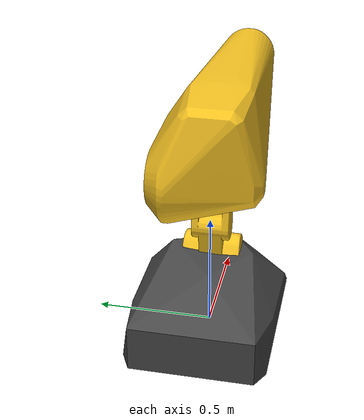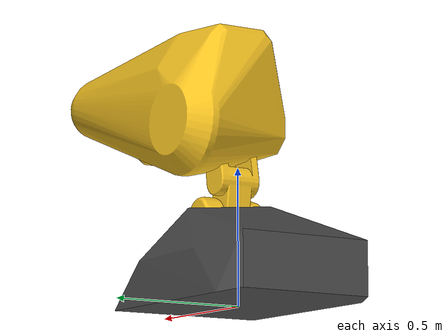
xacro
<?xml version="1.0"?>
<robot name="fanuc_lrmate200id" xmlns:xacro="http://ros.org/wiki/xacro">
  <xacro:include filename="$(find fanuc_lrmate200id_support)/urdf/lrmate200id_macro.xacro"/>
  <xacro:include filename="$(find fanuc_lrmate200id_gazebo_demo)/urdf/lrmate200id_ft.gazebo"/>
  <xacro:fanuc_lrmate200id prefix=""/>
</robot>

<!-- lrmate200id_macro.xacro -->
<robot xmlns:xacro="http://wiki.ros.org/xacro">
  <xacro:include filename="$(find fanuc_resources)/urdf/common_materials.xacro"/>

  <!-- Inertia parameters -->
  <property name="base_link_mass" value="6.215" />  <!-- This mass might be incorrect -->
  <property name="link_1_mass" value="2.13" />
  <property name="link_2_mass" value="7.65" />
  <property name="link_3_mass" value="2.91" />
  <property name="link_4_mass" value="3.70" />
  <property name="link_5_mass" value="1.70" />
  <property name="link_6_mass" value="0.137" />  <!-- This mass might be incorrect -->

  <xacro:macro name="fanuc_lrmate200id" params="prefix">
    <!-- links: main serial chain -->
    <link name="${prefix}base_link">
      <visual>
        <origin xyz="0 0 0" rpy="0 0 0"/>
        <geometry>
          <mesh filename="package://fanuc_lrmate200id_support/meshes/lrmate200id/visual/base_link.stl"/>
        </geometry>
        <xacro:material_fanuc_gray28 />
      </visual>
      <collision>
        <origin xyz="0 0 0" rpy="0 0 0"/>
        <geometry>
          <mesh filename="package://fanuc_lrmate200id_support/meshes/lrmate200id/collision/base_link.stl"/>
        </geometry>
      </collision>
      <inertial>
        <origin xyz="0 0 0" rpy="0 0 0"/>
        <mass value="${base_link_mass}"/>
        <!-- Copied from abb_irb120t https://github.com/ros-industrial/abb_experimental/blob/indigo-devel/abb_irb120_support/urdf/irb120t_macro.xacro. -->
        <inertia ixx="0.0247272" ixy="-8.0784E-05" ixz="0.00130902" iyy="0.0491285" iyz="-8.0419E-06" izz="0.0472376"/>
      </inertial>
    </link>
    <link name="${prefix}link_1">
      <visual>
        <origin xyz="0 0 0" rpy="0 0 0"/>
        <geometry>
          <mesh filename="package://fanuc_lrmate200id_support/meshes/lrmate200id/visual/link_1.stl"/>
        </geometry>
        <xacro:material_fanuc_yellow />
      </visual>
      <collision>
        <origin xyz="0 0 0" rpy="0 0 0"/>
        <geometry>
          <mesh filename="package://fanuc_lrmate200id_support/meshes/lrmate200id/collision/link_1.stl"/>
        </geometry>
      </collision>
      <inertial>
        <origin xyz="-0.000010 -0.054550 0.028725" rpy="0 0 0"/>
        <mass value="${link_1_mass}"/>
        <inertia
          ixx="${600 * 0.000048}" ixy="0.0" ixz="${600 * -0.000006}"
          iyy="${600 * 0.000035}" iyz="0.0" izz="${600 * 0.000037}"/>
      </inertial>
    </link>
    <link name="${prefix}link_2">
      <visual>
        <origin xyz="0 0 0" rpy="0 0 0"/>
        <geometry>
          <mesh filename="package://fanuc_lrmate200id_support/meshes/lrmate200id/visual/link_2.stl"/>
        </geometry>
        <xacro:material_fanuc_yellow />
      </visual>
      <collision>
        <origin xyz="0 0 0" rpy="0 0 0"/>
        <geometry>
          <mesh filename="package://fanuc_lrmate200id_support/meshes/lrmate200id/collision/link_2.stl"/>
        </geometry>
      </collision>
      <inertial>
        <origin xyz="-0.002701 -0.000977 0.159466" rpy="0 0 0"/>
        <mass value="${link_2_mass}"/>
        <inertia
          ixx="${600 * 0.000182}" ixy="0.0" ixz="0.0"
          iyy="${600 * 0.000157}" iyz="${600 * -0.000001}"
          izz="${600 * 0.000049}"/>
      </inertial>
    </link>
    <link name="${prefix}link_3">
      <visual>
        <origin xyz="0 0 0" rpy="0 0 0"/>
        <geometry>
          <mesh filename="package://fanuc_lrmate200id_support/meshes/lrmate200id/visual/link_3.stl"/>
        </geometry>
        <xacro:material_fanuc_yellow />
      </visual>
      <collision>
        <origin xyz="0 0 0" rpy="0 0 0"/>
        <geometry>
          <mesh filename="package://fanuc_lrmate200id_support/meshes/lrmate200id/collision/link_3.stl"/>
        </geometry>
      </collision>
      <inertial>
        <origin xyz="-0.000065 0.017074 0.008866" rpy="0 0 0"/>
        <mass value="${link_3_mass}"/>
        <inertia
          ixx="${600 * 0.000007}" ixy="0.0" ixz="${600 * -0.000001}"
          iyy="${600 * 0.000008}" iyz="0.0"
          izz="${600 * 0.000008}"/>
      </inertial>
    </link>
    <link name="${prefix}link_4">
      <visual>
        <origin xyz="0 0 0" rpy="0 0 0"/>
        <geometry>
          <mesh filename="package://fanuc_lrmate200id_support/meshes/lrmate200id/visual/link_4.stl"/>
        </geometry>
        <xacro:material_fanuc_yellow />
      </visual>
      <collision>
        <origin xyz="0 0 0" rpy="0 0 0"/>
        <geometry>
          <mesh filename="package://fanuc_lrmate200id_support/meshes/lrmate200id/collision/link_4.stl"/>
        </geometry>
      </collision>
      <inertial>
        <origin xyz="0.000067 0.002203 0.221634" rpy="0 0 0"/>
        <mass value="${link_4_mass}"/>
        <inertia
          ixx="${600 * 0.000005}" ixy="0.0" ixz="0.0"
          iyy="${600 * 0.000019}" iyz="0.0"
          izz="${600 * 0.000019}"/>
      </inertial>
    </link>
    <link name="${prefix}link_5">
      <visual>
        <origin xyz="0 0 0" rpy="0 0 0"/>
        <geometry>
          <mesh filename="package://fanuc_lrmate200id_support/meshes/lrmate200id/visual/link_5.stl"/>
        </geometry>
        <xacro:material_fanuc_yellow />
      </visual>
      <collision>
        <origin xyz="0 0 0" rpy="0 0 0"/>
        <geometry>
          <mesh filename="package://fanuc_lrmate200id_support/meshes/lrmate200id/collision/link_5.stl"/>
        </geometry>
      </collision>
      <inertial>
        <origin xyz="-0.000010 -0.054550 0.028725" rpy="0 0 0"/>
        <mass value="${link_5_mass}"/>
        <!-- This mass might be incorrect because of nan value of
             'link_5.stl' in Meshlab inertia estimation. -->
        <inertia
          ixx="${600 * 0.00004}" ixy="0.0" ixz="${600 * -0.000004}"
          iyy="${600 * 0.00003}" iyz="0.0" izz="${600 * 0.00003}"/>
      </inertial>
    </link>
    <link name="${prefix}link_6">
      <visual>
        <origin xyz="0 0 0" rpy="0 0 0"/>
        <geometry>
          <mesh filename="package://fanuc_lrmate200id_support/meshes/lrmate200id/visual/link_6.stl"/>
        </geometry>
        <xacro:material_fanuc_black />
      </visual>
      <collision>
        <origin xyz="0 0 0" rpy="0 0 0"/>
        <geometry>
          <mesh filename="package://fanuc_lrmate200id_support/meshes/lrmate200id/collision/link_6.stl"/>
        </geometry>
      </collision>
      <inertial>
        <origin xyz="-0.000000 0.000000 -0.003006" rpy="0 0 0" />
        <mass value="${link_6_mass}"/>
        <inertia
          ixx="0.01" ixy="0.0" ixz="0.0"
          iyy="0.01" iyz="0.0"
          izz="0.01"/>
      </inertial>
    </link>

    <!-- joints: main serial chain -->
    <joint name="${prefix}joint_1" type="revolute">
      <origin xyz="0 0 0.330" rpy="0 0 0" />
      <parent link="${prefix}base_link" />
      <child link="${prefix}link_1" />
      <axis xyz="0 0 1" />
      <limit effort="0" lower="-2.965" upper="2.965" velocity="7.85" />
      <dynamics damping="1.0" friction="1.0"/>
    </joint>
    <joint name="${prefix}joint_2" type="revolute">
      <origin xyz="0.050 0 0" rpy="0 0 0"/>
      <parent link="${prefix}link_1" />
      <child link="${prefix}link_2" />
      <axis xyz="0 1 0" />
      <limit effort="0" lower="-1.745329" upper="2.530727" velocity="6.63" />
      <dynamics damping="1.0" friction="1.0"/>
    </joint>
    <joint name="${prefix}joint_3" type="revolute">
      <origin xyz="0 0 0.330" rpy="0 0 0"/>
      <parent link="${prefix}link_2" />
      <child link="${prefix}link_3" />
      <axis xyz="0 -1 0" />
      <limit effort="0" lower="-2.450966" upper="4.886922" velocity="9.08" />
      <dynamics damping="1.0" friction="1.0"/>
    </joint>
    <joint name="${prefix}joint_4" type="revolute">
      <origin xyz="0 0 0.035" rpy="0 0 0"/>
      <parent link="${prefix}link_3"/>
      <child link="${prefix}link_4"/>
      <axis xyz="-1 0 0"/>
      <limit effort="0" lower="-3.315" upper="3.315" velocity="9.60" />
      <dynamics damping="1.0" friction="1.0"/>
    </joint>
    <joint name="${prefix}joint_5" type="revolute">
      <origin xyz="0.335 0 0" rpy="0 0 0"/>
      <parent link="${prefix}link_4"/>
      <child link="${prefix}link_5"/>
      <axis xyz="0 -1 0"/>
      <limit effort="0" lower="-2.18" upper="2.18" velocity="9.51" />
      <dynamics damping="1.0" friction="1.0"/>
    </joint>
    <joint name="${prefix}joint_6" type="revolute">
      <origin xyz="0.080 0 0" rpy="0 0 0"/>
      <parent link="${prefix}link_5"/>
      <child link="${prefix}link_6"/>
      <axis xyz="-1 0 0"/>
      <limit effort="0" lower="-6.285" upper="6.285" velocity="17.45" />
      <dynamics damping="1.0" friction="1.0"/>
    </joint>

    <!-- ROS-Industrial 'base' frame: base_link to Fanuc World Coordinates transform -->
    <link name="${prefix}base" />
    <joint name="${prefix}base_link-base" type="fixed">
      <origin xyz="0 0 0.330" rpy="0 0 0"/>
      <parent link="${prefix}base_link"/>
      <child link="${prefix}base"/>
    </joint>

    <!-- ROS-Industrial 'flange' frame: attachment point for EEF models -->
    <link name="${prefix}flange" />
    <joint name="${prefix}joint_6-flange" type="fixed">
      <origin xyz="0 0 0" rpy="0 0 0" />
      <parent link="${prefix}link_6" />
      <child link="${prefix}flange" />
    </joint>

    <!-- ROS-Industrial 'tool0' frame: all-zeros tool frame -->
    <link name="${prefix}tool0" />
    <joint name="${prefix}link_6-tool0" type="fixed">
      <origin xyz="0 0 0" rpy="${pi} ${-pi/2.0} 0" />
      <parent link="${prefix}flange" />
      <child link="${prefix}tool0" />
    </joint>
  </xacro:macro>
</robot>

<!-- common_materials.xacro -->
<robot xmlns:xacro="http://www.ros.org/wiki/xacro">
  <xacro:include filename="$(find fanuc_lrmate200id_support)/urdf/common_colours.xacro"/>

  <xacro:macro name="material_fanuc_yellow">
    <material name="">
      <color rgba="${color_fanuc_yellow}"/>
    </material>
  </xacro:macro>

  <xacro:macro name="material_fanuc_white">
    <material name="">
      <color rgba="${color_fanuc_white}"/>
    </material>
  </xacro:macro>

  <xacro:macro name="material_fanuc_grey">
    <material name="">
      <color rgba="${color_fanuc_grey}"/>
    </material>
  </xacro:macro>

  <xacro:macro name="material_fanuc_gray24">
    <material name="">
      <color rgba="${color_fanuc_gray24}"/>
    </material>
  </xacro:macro>

  <xacro:macro name="material_fanuc_gray28">
    <material name="">
      <color rgba="${color_fanuc_gray28}"/>
    </material>
  </xacro:macro>

  <xacro:macro name="material_fanuc_gray31">
    <material name="">
      <color rgba="${color_fanuc_gray31}"/>
    </material>
  </xacro:macro>

  <xacro:macro name="material_fanuc_gray40">
    <material name="">
      <color rgba="${color_fanuc_gray40}"/>
    </material>
  </xacro:macro>

  <xacro:macro name="material_fanuc_yellow1">
    <material name="">
      <color rgba="${color_fanuc_yellow1}"/>
    </material>
  </xacro:macro>

  <xacro:macro name="material_fanuc_BAB0B0">
    <material name="">
      <color rgba="${color_fanuc_BAB0B0}"/>
    </material>
  </xacro:macro>

  <xacro:macro name="material_fanuc_E6E6E6">
    <material name="">
      <color rgba="${color_fanuc_E6E6E6}"/>
    </material>
  </xacro:macro>

  <xacro:macro name="material_fanuc_00FF73">
    <material name="">
      <color rgba="${color_fanuc_00FF73}"/>
    </material>
  </xacro:macro>

  <xacro:macro name="material_fanuc_black">
    <material name="">
      <color rgba="${color_fanuc_black}"/>
    </material>
  </xacro:macro>

  <xacro:macro name="material_fanuc_greyish">
    <material name="">
      <color rgba="${color_fanuc_greyish}"/>
    </material>
  </xacro:macro>

  <xacro:macro name="material_fanuc_green">
    <material name="">
      <color rgba="${color_fanuc_green}"/>
    </material>
  </xacro:macro>

</robot>

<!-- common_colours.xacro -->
<robot xmlns:xacro="http://www.ros.org/wiki/xacro">

  <!-- RAL 1021: Rape yellow -->
  <xacro:property name="color_fanuc_yellow"   value="0.96 0.76 0.13 1.0" />
  <!-- RAL 9002: Grey white -->
  <xacro:property name="color_fanuc_white"    value="0.86 0.85 0.81 1.0" />
  <!-- RAL 7024: Graphite grey -->
  <xacro:property name="color_fanuc_grey"     value="0.34 0.35 0.36 1.0" />

  <!-- Roboguide colours -->
  <xacro:property name="color_fanuc_gray24"   value="${ 61/255} ${ 61/255} ${ 61/255} 1.0" />
  <xacro:property name="color_fanuc_gray28"   value="${ 71/255} ${ 71/255} ${ 71/255} 1.0" />
  <xacro:property name="color_fanuc_gray31"   value="${ 79/255} ${ 79/255} ${ 79/255} 1.0" />
  <xacro:property name="color_fanuc_gray40"   value="${102/255} ${102/255} ${102/255} 1.0" />
  <!-- #FFFF00 -->
  <xacro:property name="color_fanuc_yellow1"  value="${255/255} ${255/255} ${  0/255} 1.0" />
  <!-- #BAB0B0 -->
  <xacro:property name="color_fanuc_BAB0B0"   value="${186/255} ${176/255} ${176/255} 1.0" />
  <xacro:property name="color_fanuc_E6E6E6"   value="${230/255} ${230/255} ${230/255} 1.0" />
  <!-- #00FF73: 'collaborative green' -->
  <xacro:property name="color_fanuc_00FF73"   value="${  0/255} ${255/255} ${115/255} 1.0" />

  <!-- approximations -->
  <xacro:property name="color_fanuc_black"    value="0.15 0.15 0.15 1.0" />
  <xacro:property name="color_fanuc_greyish"  value="0.75 0.75 0.75 1.0" />
  <xacro:property name="color_fanuc_green"    value="${  0/255} ${155/255} ${ 70/255} 1.0" />

</robot>

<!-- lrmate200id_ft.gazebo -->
<robot xmlns:xacro="http://ros.org/wiki/xacro">

  <xacro:include filename="$(find fanuc_lrmate200id_gazebo)/urdf/lrmate200id_macro.xacro"/>

  <!-- fix the base to the Gazebo world -->
  <link name="world" />
  <joint name="fixed" type="fixed">
    <origin xyz="0 0 0" rpy="0 0 0"/>
    <parent link="world"/>
    <child link="base_link"/>
  </joint>

  <gazebo reference="joint_6">
    <provideFeedback>true</provideFeedback>
  </gazebo>

  <gazebo>
    <plugin name="ft_sensor" filename="libgazebo_ros_ft_sensor.so">
      <updateRate>100.0</updateRate>
      <topicName>ft_sensor</topicName>
      <jointName>joint_6</jointName>
    </plugin>
  </gazebo>

</robot>
